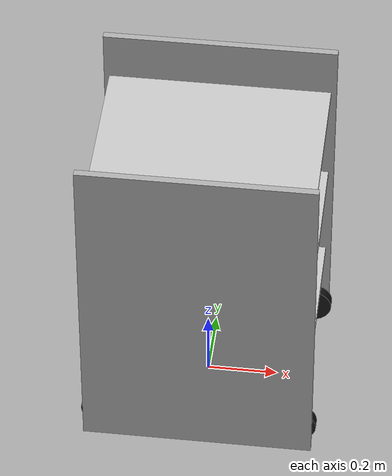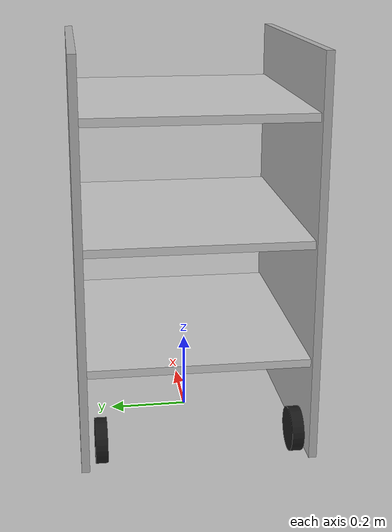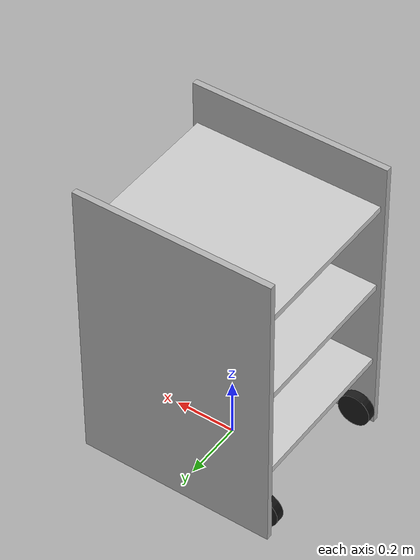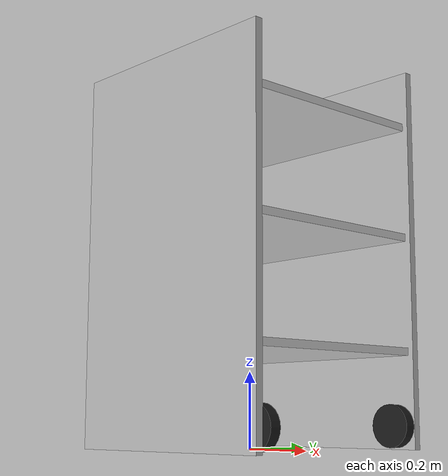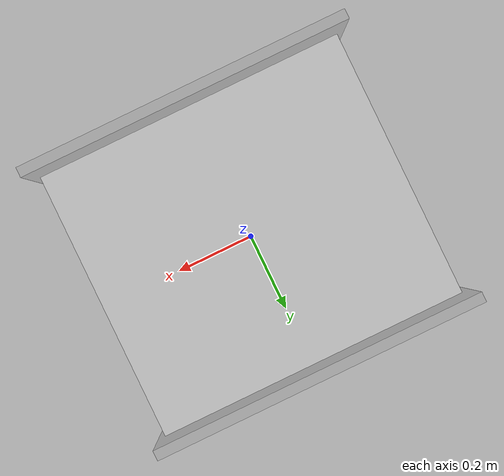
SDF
<?xml version="1.0"?>
<sdf version="1.6">
  <model name="supply_cart">
    <static>true</static>
    <!-- Frame sides -->
    <link name="side_l">
      <pose>0 0.28 0.5 0 0 0</pose>
      <collision name="c"><geometry><box><size>0.65 0.02 1.0</size></box></geometry></collision>
      <visual name="v"><geometry><box><size>0.65 0.02 1.0</size></box></geometry>
        <material><ambient>0.7 0.7 0.7 1</ambient><diffuse>0.7 0.7 0.7 1</diffuse></material></visual>
    </link>
    <link name="side_r">
      <pose>0 -0.28 0.5 0 0 0</pose>
      <collision name="c"><geometry><box><size>0.65 0.02 1.0</size></box></geometry></collision>
      <visual name="v"><geometry><box><size>0.65 0.02 1.0</size></box></geometry>
        <material><ambient>0.7 0.7 0.7 1</ambient><diffuse>0.7 0.7 0.7 1</diffuse></material></visual>
    </link>
    <!-- 3 shelves -->
    <link name="shelf1">
      <pose>0 0 0.25 0 0 0</pose>
      <collision name="c"><geometry><box><size>0.62 0.55 0.02</size></box></geometry></collision>
      <visual name="v"><geometry><box><size>0.62 0.55 0.02</size></box></geometry>
        <material><ambient>0.8 0.8 0.8 1</ambient><diffuse>0.8 0.8 0.8 1</diffuse></material></visual>
    </link>
    <link name="shelf2">
      <pose>0 0 0.55 0 0 0</pose>
      <collision name="c"><geometry><box><size>0.62 0.55 0.02</size></box></geometry></collision>
      <visual name="v"><geometry><box><size>0.62 0.55 0.02</size></box></geometry>
        <material><ambient>0.8 0.8 0.8 1</ambient><diffuse>0.8 0.8 0.8 1</diffuse></material></visual>
    </link>
    <link name="shelf3">
      <pose>0 0 0.85 0 0 0</pose>
      <collision name="c"><geometry><box><size>0.62 0.55 0.02</size></box></geometry></collision>
      <visual name="v"><geometry><box><size>0.62 0.55 0.02</size></box></geometry>
        <material><ambient>0.8 0.8 0.8 1</ambient><diffuse>0.8 0.8 0.8 1</diffuse></material></visual>
    </link>
    <!-- Wheels -->
    <link name="w1"><pose>0.28 0.24 0.06 1.5708 0 0</pose>
      <visual name="v"><geometry><cylinder><radius>0.055</radius><length>0.03</length></cylinder></geometry>
        <material><ambient>0.1 0.1 0.1 1</ambient><diffuse>0.1 0.1 0.1 1</diffuse></material></visual>
      <collision name="c"><geometry><cylinder><radius>0.055</radius><length>0.03</length></cylinder></geometry></collision>
    </link>
    <link name="w2"><pose>0.28 -0.24 0.06 1.5708 0 0</pose>
      <visual name="v"><geometry><cylinder><radius>0.055</radius><length>0.03</length></cylinder></geometry>
        <material><ambient>0.1 0.1 0.1 1</ambient><diffuse>0.1 0.1 0.1 1</diffuse></material></visual>
      <collision name="c"><geometry><cylinder><radius>0.055</radius><length>0.03</length></cylinder></geometry></collision>
    </link>
    <link name="w3"><pose>-0.28 0.24 0.06 1.5708 0 0</pose>
      <visual name="v"><geometry><cylinder><radius>0.055</radius><length>0.03</length></cylinder></geometry>
        <material><ambient>0.1 0.1 0.1 1</ambient><diffuse>0.1 0.1 0.1 1</diffuse></material></visual>
      <collision name="c"><geometry><cylinder><radius>0.055</radius><length>0.03</length></cylinder></geometry></collision>
    </link>
    <link name="w4"><pose>-0.28 -0.24 0.06 1.5708 0 0</pose>
      <visual name="v"><geometry><cylinder><radius>0.055</radius><length>0.03</length></cylinder></geometry>
        <material><ambient>0.1 0.1 0.1 1</ambient><diffuse>0.1 0.1 0.1 1</diffuse></material></visual>
      <collision name="c"><geometry><cylinder><radius>0.055</radius><length>0.03</length></cylinder></geometry></collision>
    </link>
  </model>
</sdf>
